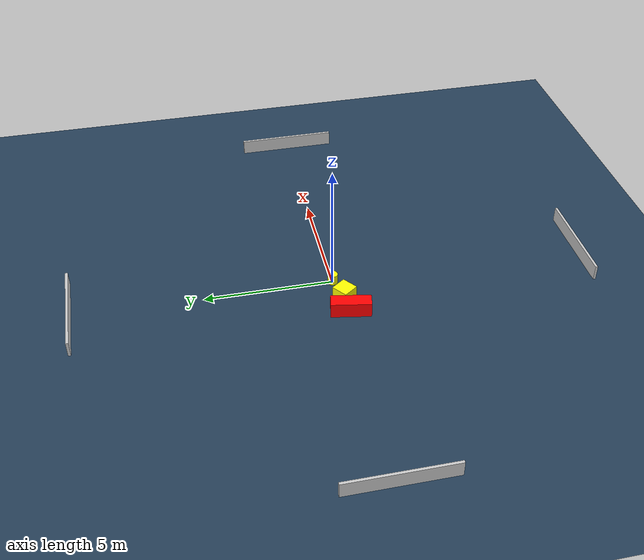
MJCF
<?xml version="1.0" ?>
<mujoco model="generated_environment">
  <option timestep="0.01" integrator="RK4" cone="elliptic"/>
  <default>
    <geom density="1"/>
  </default>
  <asset>
    <texture builtin="gradient" height="3072" name="skybox" rgb1="0.3 0.5 0.7" rgb2="0 0 0" type="skybox" width="512"/>
    <texture builtin="checker" height="300" name="groundplane" rgb1="0.2 0.3 0.4" rgb2="0.1 0.2 0.3" type="2d" width="300"/>
    <material name="groundplane" reflectance="0.2" texrepeat="5 5" texture="groundplane"/>
  </asset>
  <worldbody>
    <light dir="0 0 -1" directional="true" pos="0 0 1.5"/>
    <geom condim="3" friction="0.5 0.005 0.001" material="groundplane" name="floor" pos="0 0 0" size="0 0 0.05" type="plane"/>
    <body name="walls">
      <geom name="wall_1" condim="4" pos="-10.0 0.0 0.3" rgba="0.800000011920929 0.800000011920929 0.800000011920929 1.0" size="0.05 2.0 0.3" type="box"/>
      <geom name="wall_2" condim="4" pos="10.0 0.0 0.3" rgba="0.800000011920929 0.800000011920929 0.800000011920929 1.0" size="0.05 2.0 0.3" type="box"/>
      <geom name="wall_3" condim="4" pos="0.0 -10.0 0.3" rgba="0.800000011920929 0.800000011920929 0.800000011920929 1.0" size="2.0 0.05 0.3" type="box"/>
      <geom name="wall_4" condim="4" pos="0.0 10.0 0.3" rgba="0.800000011920929 0.800000011920929 0.800000011920929 1.0" size="2.0 0.05 0.3" type="box"/>
    </body>
    <body name="robot">
      <joint name="joint_x" type="slide" pos="0 0 0" axis="1 0 0"/>
      <joint name="joint_y" type="slide" pos="0 0 0" axis="0 1 0"/>
      <geom name="robot" type="cylinder" pos="0.0 0.0 0.2" size="0.2 0.2 0.0" mass="5.0" friction="1.0 0.005 0.0001" condim="4" rgba="1.0 1.0 0.0 1.0"/>
    </body>
    <body name="obstacle_1_movable">
      <geom name="obstacle_1_movable" condim="4" pos="-1.0862893354528826 -0.2279987349398309 0.3" euler="0 0 126.61710282680083" friction="0.0 0.005 0.001" rgba="1.0 1.0 0.0 1.0" size="0.319459501154327 0.327401833692906 0.3" type="box" mass="0.1"/>
      <joint type="free"/>
    </body>
    <body name="obstacle_2_static">
      <geom name="obstacle_2_static" condim="4" pos="-1.8607970931508748 -0.2979777472645296 0.3" euler="0 0 259.65824828824015" friction="0.0 0.005 0.001" rgba="1.0 0.0 0.0 1.0" size="0.7648066449000581 0.2709086091715748 0.3" type="box"/>
    </body>
  </worldbody>
  <actuator>
    <motor name="actuator_x" joint="joint_x" gear="1" ctrlrange="-1 1"/>
    <motor name="actuator_y" joint="joint_y" gear="1" ctrlrange="-1 1"/>
  </actuator>
</mujoco>
